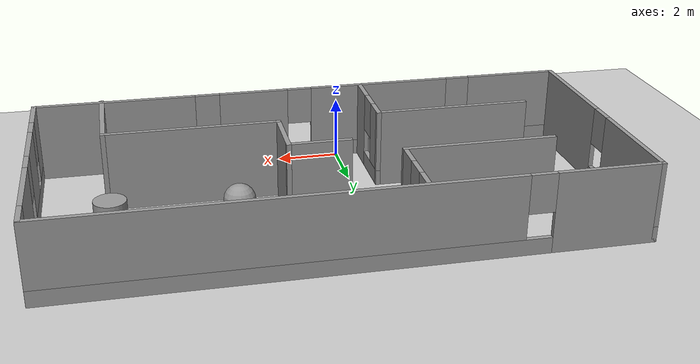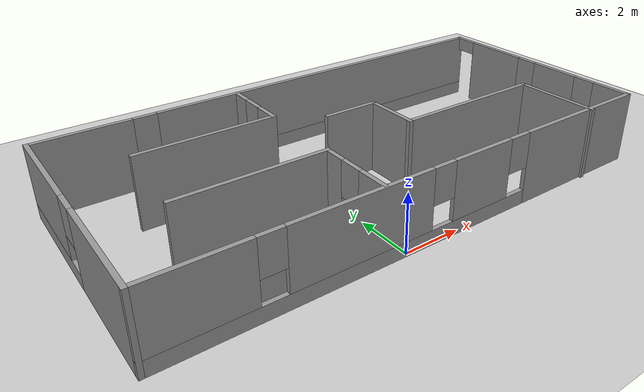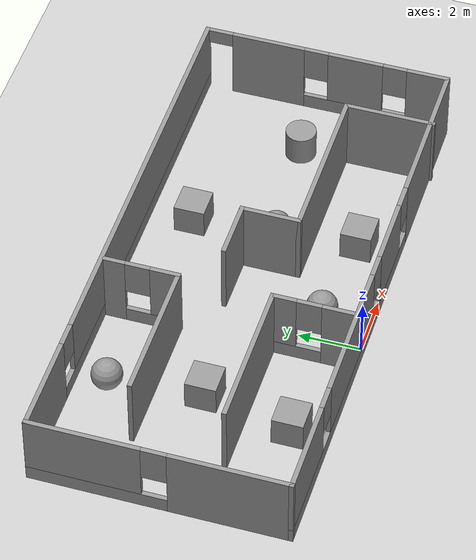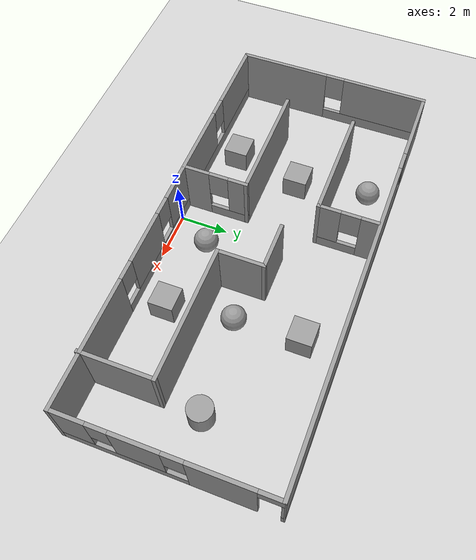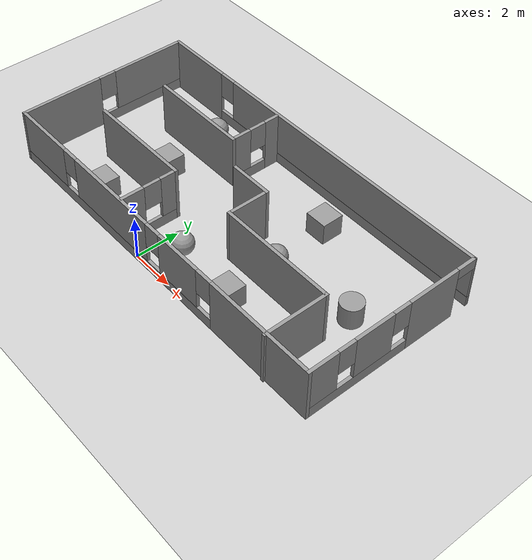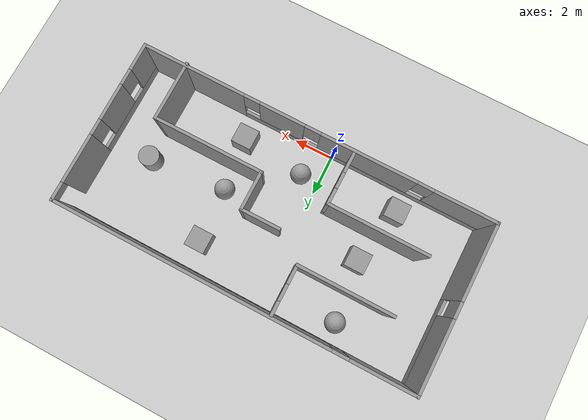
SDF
<sdf version="1.7">
 <world name="default">
  <light name="sun" type="directional">
   <pose>0 0 10 0 -0 0</pose>
   <diffuse>0.8 0.8 0.8 1</diffuse>
   <specular>0.2 0.2 0.2 1</specular>
   <attenuation>
    <range>1000</range>
    <constant>0.9</constant>
    <linear>0.01</linear>
    <quadratic>0.001</quadratic>
   </attenuation>
   <direction>-0.5 0.1 -0.9</direction>
   <spot><inner_angle>0</inner_angle><outer_angle>0</outer_angle><falloff>0</falloff></spot>
  </light>
  <model name="ground_plane">
   <static>1</static>
   <link name="link">
    <collision name="collision">
     <geometry><plane><normal>0 0 1</normal><size>100 100</size></plane></geometry>
     <surface>
      <contact><collide_bitmask>65535</collide_bitmask></contact>
      <friction><ode><mu>100</mu><mu2>50</mu2></ode></friction>
     </surface>
    </collision>
    <visual name="visual">
     <cast_shadows>0</cast_shadows>
     <geometry><plane><normal>0 0 1</normal><size>100 100</size></plane></geometry>
     <material>
      <script><uri>file://media/materials/scripts/gazebo.material</uri><name>Gazebo/Grey</name></script>
     </material>
    </visual>
   </link>
  </model>
  <gravity>0 0 -9.8</gravity>
  <magnetic_field>6e-06 2.3e-05 -4.2e-05</magnetic_field>
  <atmosphere type="adiabatic"/>
  <physics type="ode">
   <max_step_size>0.001</max_step_size>
   <real_time_factor>1</real_time_factor>
   <real_time_update_rate>1000</real_time_update_rate>
  </physics>
  <scene><ambient>0.4 0.4 0.4 1</ambient><background>0.7 0.7 0.7 1</background><shadows>1</shadows></scene>
  <spherical_coordinates>
   <surface_model>EARTH_WGS84</surface_model>
   <latitude_deg>0</latitude_deg>
   <longitude_deg>0</longitude_deg>
   <elevation>0</elevation>
   <heading_deg>0</heading_deg>
  </spherical_coordinates>
  <model name="world">
   <pose>1.08571 3.96011 0 0 -0 0</pose>
   <link name="Wall_11">
    <pose>-8.8 0.038361 0 0 -0 1.5708</pose>
    <visual name="Wall_11_Visual_0">
     <pose>-2.20315 0 1.25 0 -0 0</pose>
     <geometry><box><size>3.8437 0.15 2.5</size></box></geometry>
     <material>
      <script><uri>file://media/materials/scripts/gazebo.material</uri><name>Gazebo/Grey</name></script>
      <ambient>1 1 1 1</ambient>
     </material>
     <meta><layer>0</layer></meta>
    </visual>
    <collision name="Wall_11_Collision_0">
     <geometry><box><size>3.8437 0.15 2.5</size></box></geometry>
     <pose>-2.20315 0 1.25 0 -0 0</pose>
    </collision>
    <visual name="Wall_11_Visual_1">
     <pose>1.92185 0 0.25 0 -0 0</pose>
     <geometry><box><size>4.4063 0.15 0.5</size></box></geometry>
     <material>
      <script><uri>file://media/materials/scripts/gazebo.material</uri><name>Gazebo/Grey</name></script>
      <ambient>1 1 1 1</ambient>
     </material>
     <meta><layer>0</layer></meta>
    </visual>
    <collision name="Wall_11_Collision_1">
     <geometry><box><size>4.4063 0.15 0.5</size></box></geometry>
     <pose>1.92185 0 0.25 0 -0 0</pose>
    </collision>
    <visual name="Wall_11_Visual_2">
     <pose>2.32185 0 1.5 0 -0 0</pose>
     <geometry><box><size>3.6063 0.15 2</size></box></geometry>
     <material>
      <script><uri>file://media/materials/scripts/gazebo.material</uri><name>Gazebo/Grey</name></script>
      <ambient>1 1 1 1</ambient>
     </material>
     <meta><layer>0</layer></meta>
    </visual>
    <collision name="Wall_11_Collision_2">
     <geometry><box><size>3.6063 0.15 2</size></box></geometry>
     <pose>2.32185 0 1.5 0 -0 0</pose>
    </collision>
    <visual name="Wall_11_Visual_3">
     <pose>0.118702 0 1.9 0 -0 0</pose>
     <geometry><box><size>0.8 0.15 1.2</size></box></geometry>
     <material>
      <script><uri>file://media/materials/scripts/gazebo.material</uri><name>Gazebo/Grey</name></script>
      <ambient>1 1 1 1</ambient>
     </material>
     <meta><layer>0</layer></meta>
    </visual>
    <collision name="Wall_11_Collision_3">
     <geometry><box><size>0.8 0.15 1.2</size></box></geometry>
     <pose>0.118702 0 1.9 0 -0 0</pose>
    </collision>
   </link>
   <link name="Wall_12">
    <pose>-0 4.08836 0 0 -0 0</pose>
    <visual name="Wall_12_Visual_0">
     <pose>-7.25569 0 1.25 0 -0 0</pose>
     <geometry><box><size>3.23861 0.15 2.5</size></box></geometry>
     <material>
      <script><uri>file://media/materials/scripts/gazebo.material</uri><name>Gazebo/Grey</name></script>
      <ambient>1 1 1 1</ambient>
     </material>
     <meta><layer>0</layer></meta>
    </visual>
    <collision name="Wall_12_Collision_0">
     <geometry><box><size>3.23861 0.15 2.5</size></box></geometry>
     <pose>-7.25569 0 1.25 0 -0 0</pose>
    </collision>
    <visual name="Wall_12_Visual_1">
     <pose>1.61931 0 0.25 0 -0 0</pose>
     <geometry><box><size>14.5114 0.15 0.5</size></box></geometry>
     <material>
      <script><uri>file://media/materials/scripts/gazebo.material</uri><name>Gazebo/Grey</name></script>
      <ambient>1 1 1 1</ambient>
     </material>
     <meta><layer>0</layer></meta>
    </visual>
    <collision name="Wall_12_Collision_1">
     <geometry><box><size>14.5114 0.15 0.5</size></box></geometry>
     <pose>1.61931 0 0.25 0 -0 0</pose>
    </collision>
    <visual name="Wall_12_Visual_2">
     <pose>2.01931 0 1.5 0 -0 0</pose>
     <geometry><box><size>13.7114 0.15 2</size></box></geometry>
     <material>
      <script><uri>file://media/materials/scripts/gazebo.material</uri><name>Gazebo/Grey</name></script>
      <ambient>1 1 1 1</ambient>
     </material>
     <meta><layer>0</layer></meta>
    </visual>
    <collision name="Wall_12_Collision_2">
     <geometry><box><size>13.7114 0.15 2</size></box></geometry>
     <pose>2.01931 0 1.5 0 -0 0</pose>
    </collision>
    <visual name="Wall_12_Visual_3">
     <pose>-5.23639 0 1.9 0 -0 0</pose>
     <geometry><box><size>0.8 0.15 1.2</size></box></geometry>
     <material>
      <script><uri>file://media/materials/scripts/gazebo.material</uri><name>Gazebo/Grey</name></script>
      <ambient>1 1 1 1</ambient>
     </material>
     <meta><layer>0</layer></meta>
    </visual>
    <collision name="Wall_12_Collision_3">
     <geometry><box><size>0.8 0.15 1.2</size></box></geometry>
     <pose>-5.23639 0 1.9 0 -0 0</pose>
    </collision>
   </link>
   <link name="Wall_13">
    <pose>8.8 0.038361 0 0 -0 -1.5708</pose>
    <visual name="Wall_13_Visual_0">
     <pose>-4.10039 0 1.25 0 -0 0</pose>
     <geometry><box><size>0.049209 0.15 2.5</size></box></geometry>
     <material>
      <script><uri>file://media/materials/scripts/gazebo.material</uri><name>Gazebo/Grey</name></script>
      <ambient>1 1 1 1</ambient>
     </material>
     <meta><layer>0</layer></meta>
    </visual>
    <collision name="Wall_13_Collision_0">
     <geometry><box><size>0.049209 0.15 2.5</size></box></geometry>
     <pose>-4.10039 0 1.25 0 -0 0</pose>
    </collision>
    <visual name="Wall_13_Visual_1">
     <pose>-1.95492 0 1.25 0 -0 0</pose>
     <geometry><box><size>2.44174 0.15 2.5</size></box></geometry>
     <material>
      <script><uri>file://media/materials/scripts/gazebo.material</uri><name>Gazebo/Grey</name></script>
      <ambient>1 1 1 1</ambient>
     </material>
     <meta><layer>0</layer></meta>
    </visual>
    <collision name="Wall_13_Collision_1">
     <geometry><box><size>2.44174 0.15 2.5</size></box></geometry>
     <pose>-1.95492 0 1.25 0 -0 0</pose>
    </collision>
    <visual name="Wall_13_Visual_2">
     <pose>-0.734049 0 1.25 0 -0 0</pose>
     <geometry><box><size>0 0.15 2.5</size></box></geometry>
     <material>
      <script><uri>file://media/materials/scripts/gazebo.material</uri><name>Gazebo/Grey</name></script>
      <ambient>1 1 1 1</ambient>
     </material>
     <meta><layer>0</layer></meta>
    </visual>
    <collision name="Wall_13_Collision_2">
     <geometry><box><size>0 0.15 2.5</size></box></geometry>
     <pose>-0.734049 0 1.25 0 -0 0</pose>
    </collision>
    <visual name="Wall_13_Visual_3">
     <pose>1.69548 0 0.25 0 -0 0</pose>
     <geometry><box><size>4.85905 0.15 0.5</size></box></geometry>
     <material>
      <script><uri>file://media/materials/scripts/gazebo.material</uri><name>Gazebo/Grey</name></script>
      <ambient>1 1 1 1</ambient>
     </material>
     <meta><layer>0</layer></meta>
    </visual>
    <collision name="Wall_13_Collision_3">
     <geometry><box><size>4.85905 0.15 0.5</size></box></geometry>
     <pose>1.69548 0 0.25 0 -0 0</pose>
    </collision>
    <visual name="Wall_13_Visual_4">
     <pose>0.9888 0 1.5 0 -0 0</pose>
     <geometry><box><size>1.8457 0.15 2</size></box></geometry>
     <material>
      <script><uri>file://media/materials/scripts/gazebo.material</uri><name>Gazebo/Grey</name></script>
      <ambient>1 1 1 1</ambient>
     </material>
     <meta><layer>0</layer></meta>
    </visual>
    <collision name="Wall_13_Collision_4">
     <geometry><box><size>1.8457 0.15 2</size></box></geometry>
     <pose>0.9888 0 1.5 0 -0 0</pose>
    </collision>
    <visual name="Wall_13_Visual_5">
     <pose>3.41832 0 1.5 0 -0 0</pose>
     <geometry><box><size>1.41335 0.15 2</size></box></geometry>
     <material>
      <script><uri>file://media/materials/scripts/gazebo.material</uri><name>Gazebo/Grey</name></script>
      <ambient>1 1 1 1</ambient>
     </material>
     <meta><layer>0</layer></meta>
    </visual>
    <collision name="Wall_13_Collision_5">
     <geometry><box><size>1.41335 0.15 2</size></box></geometry>
     <pose>3.41832 0 1.5 0 -0 0</pose>
    </collision>
    <visual name="Wall_13_Visual_6">
     <pose>-0.734049 0 1.9 0 -0 0</pose>
     <geometry><box><size>0 0.15 1.2</size></box></geometry>
     <material>
      <script><uri>file://media/materials/scripts/gazebo.material</uri><name>Gazebo/Grey</name></script>
      <ambient>1 1 1 1</ambient>
     </material>
     <meta><layer>0</layer></meta>
    </visual>
    <collision name="Wall_13_Collision_6">
     <geometry><box><size>0 0.15 1.2</size></box></geometry>
     <pose>-0.734049 0 1.9 0 -0 0</pose>
    </collision>
    <visual name="Wall_13_Visual_7">
     <pose>-0.334049 0 1.9 0 -0 0</pose>
     <geometry><box><size>0.8 0.15 1.2</size></box></geometry>
     <material>
      <script><uri>file://media/materials/scripts/gazebo.material</uri><name>Gazebo/Grey</name></script>
      <ambient>1 1 1 1</ambient>
     </material>
     <meta><layer>0</layer></meta>
    </visual>
    <collision name="Wall_13_Collision_7">
     <geometry><box><size>0.8 0.15 1.2</size></box></geometry>
     <pose>-0.334049 0 1.9 0 -0 0</pose>
    </collision>
    <visual name="Wall_13_Visual_8">
     <pose>2.31165 0 1.9 0 -0 0</pose>
     <geometry><box><size>0.8 0.15 1.2</size></box></geometry>
     <material>
      <script><uri>file://media/materials/scripts/gazebo.material</uri><name>Gazebo/Grey</name></script>
      <ambient>1 1 1 1</ambient>
     </material>
     <meta><layer>0</layer></meta>
    </visual>
    <collision name="Wall_13_Collision_8">
     <geometry><box><size>0.8 0.15 1.2</size></box></geometry>
     <pose>2.31165 0 1.9 0 -0 0</pose>
    </collision>
    <visual name="Wall_13_Visual_9">
     <pose>-3.62579 0 2.25 0 -0 0</pose>
     <geometry><box><size>0.9 0.15 0.5</size></box></geometry>
     <material>
      <script><uri>file://media/materials/scripts/gazebo.material</uri><name>Gazebo/Grey</name></script>
      <ambient>1 1 1 1</ambient>
     </material>
     <meta><layer>0</layer></meta>
    </visual>
    <collision name="Wall_13_Collision_9">
     <geometry><box><size>0.9 0.15 0.5</size></box></geometry>
     <pose>-3.62579 0 2.25 0 -0 0</pose>
    </collision>
   </link>
   <link name="Wall_14">
    <pose>-0 -4.01164 0 0 -0 3.14159</pose>
    <visual name="Wall_14_Visual_0">
     <pose>-6.26473 0 1.25 0 -0 0</pose>
     <geometry><box><size>5.22054 0.15 2.5</size></box></geometry>
     <material>
      <script><uri>file://media/materials/scripts/gazebo.material</uri><name>Gazebo/Grey</name></script>
      <ambient>1 1 1 1</ambient>
     </material>
     <meta><layer>0</layer></meta>
    </visual>
    <collision name="Wall_14_Collision_0">
     <geometry><box><size>5.22054 0.15 2.5</size></box></geometry>
     <pose>-6.26473 0 1.25 0 -0 0</pose>
    </collision>
    <visual name="Wall_14_Visual_1">
     <pose>2.61027 0 0.25 0 -0 0</pose>
     <geometry><box><size>12.5295 0.15 0.5</size></box></geometry>
     <material>
      <script><uri>file://media/materials/scripts/gazebo.material</uri><name>Gazebo/Grey</name></script>
      <ambient>1 1 1 1</ambient>
     </material>
     <meta><layer>0</layer></meta>
    </visual>
    <collision name="Wall_14_Collision_1">
     <geometry><box><size>12.5295 0.15 0.5</size></box></geometry>
     <pose>2.61027 0 0.25 0 -0 0</pose>
    </collision>
    <visual name="Wall_14_Visual_2">
     <pose>-1.71626 0 1.5 0 -0 0</pose>
     <geometry><box><size>2.27639 0.15 2</size></box></geometry>
     <material>
      <script><uri>file://media/materials/scripts/gazebo.material</uri><name>Gazebo/Grey</name></script>
      <ambient>1 1 1 1</ambient>
     </material>
     <meta><layer>0</layer></meta>
    </visual>
    <collision name="Wall_14_Collision_2">
     <geometry><box><size>2.27639 0.15 2</size></box></geometry>
     <pose>-1.71626 0 1.5 0 -0 0</pose>
    </collision>
    <visual name="Wall_14_Visual_3">
     <pose>2.59069 0 1.5 0 -0 0</pose>
     <geometry><box><size>4.73751 0.15 2</size></box></geometry>
     <material>
      <script><uri>file://media/materials/scripts/gazebo.material</uri><name>Gazebo/Grey</name></script>
      <ambient>1 1 1 1</ambient>
     </material>
     <meta><layer>0</layer></meta>
    </visual>
    <collision name="Wall_14_Collision_3">
     <geometry><box><size>4.73751 0.15 2</size></box></geometry>
     <pose>2.59069 0 1.5 0 -0 0</pose>
    </collision>
    <visual name="Wall_14_Visual_4">
     <pose>7.31722 0 1.5 0 -0 0</pose>
     <geometry><box><size>3.11556 0.15 2</size></box></geometry>
     <material>
      <script><uri>file://media/materials/scripts/gazebo.material</uri><name>Gazebo/Grey</name></script>
      <ambient>1 1 1 1</ambient>
     </material>
     <meta><layer>0</layer></meta>
    </visual>
    <collision name="Wall_14_Collision_4">
     <geometry><box><size>3.11556 0.15 2</size></box></geometry>
     <pose>7.31722 0 1.5 0 -0 0</pose>
    </collision>
    <visual name="Wall_14_Visual_5">
     <pose>-3.25446 0 1.9 0 -0 0</pose>
     <geometry><box><size>0.8 0.15 1.2</size></box></geometry>
     <material>
      <script><uri>file://media/materials/scripts/gazebo.material</uri><name>Gazebo/Grey</name></script>
      <ambient>1 1 1 1</ambient>
     </material>
     <meta><layer>0</layer></meta>
    </visual>
    <collision name="Wall_14_Collision_5">
     <geometry><box><size>0.8 0.15 1.2</size></box></geometry>
     <pose>-3.25446 0 1.9 0 -0 0</pose>
    </collision>
    <visual name="Wall_14_Visual_6">
     <pose>-0.178068 0 1.9 0 -0 0</pose>
     <geometry><box><size>0.8 0.15 1.2</size></box></geometry>
     <material>
      <script><uri>file://media/materials/scripts/gazebo.material</uri><name>Gazebo/Grey</name></script>
      <ambient>1 1 1 1</ambient>
     </material>
     <meta><layer>0</layer></meta>
    </visual>
    <collision name="Wall_14_Collision_6">
     <geometry><box><size>0.8 0.15 1.2</size></box></geometry>
     <pose>-0.178068 0 1.9 0 -0 0</pose>
    </collision>
    <visual name="Wall_14_Visual_7">
     <pose>5.35944 0 1.9 0 -0 0</pose>
     <geometry><box><size>0.8 0.15 1.2</size></box></geometry>
     <material>
      <script><uri>file://media/materials/scripts/gazebo.material</uri><name>Gazebo/Grey</name></script>
      <ambient>1 1 1 1</ambient>
     </material>
     <meta><layer>0</layer></meta>
    </visual>
    <collision name="Wall_14_Collision_7">
     <geometry><box><size>0.8 0.15 1.2</size></box></geometry>
     <pose>5.35944 0 1.9 0 -0 0</pose>
    </collision>
   </link>
   <link name="Wall_16">
    <pose>-1.94792 2.79935 0 0 -0 -1.5708</pose>
    <visual name="Wall_16_Visual_0">
     <pose>-0.888235 0 1.25 0 -0 0</pose>
     <geometry><box><size>0.72353 0.15 2.5</size></box></geometry>
     <material>
      <script><uri>file://media/materials/scripts/gazebo.material</uri><name>Gazebo/Grey</name></script>
      <ambient>1 1 1 1</ambient>
     </material>
     <meta><layer>0</layer></meta>
    </visual>
    <collision name="Wall_16_Collision_0">
     <geometry><box><size>0.72353 0.15 2.5</size></box></geometry>
     <pose>-0.888235 0 1.25 0 -0 0</pose>
    </collision>
    <visual name="Wall_16_Visual_1">
     <pose>0.361765 0 0.25 0 -0 0</pose>
     <geometry><box><size>1.77647 0.15 0.5</size></box></geometry>
     <material>
      <script><uri>file://media/materials/scripts/gazebo.material</uri><name>Gazebo/Grey</name></script>
      <ambient>1 1 1 1</ambient>
     </material>
     <meta><layer>0</layer></meta>
    </visual>
    <collision name="Wall_16_Collision_1">
     <geometry><box><size>1.77647 0.15 0.5</size></box></geometry>
     <pose>0.361765 0 0.25 0 -0 0</pose>
    </collision>
    <visual name="Wall_16_Visual_2">
     <pose>0.761765 0 1.5 0 -0 0</pose>
     <geometry><box><size>0.97647 0.15 2</size></box></geometry>
     <material>
      <script><uri>file://media/materials/scripts/gazebo.material</uri><name>Gazebo/Grey</name></script>
      <ambient>1 1 1 1</ambient>
     </material>
     <meta><layer>0</layer></meta>
    </visual>
    <collision name="Wall_16_Collision_2">
     <geometry><box><size>0.97647 0.15 2</size></box></geometry>
     <pose>0.761765 0 1.5 0 -0 0</pose>
    </collision>
    <visual name="Wall_16_Visual_3">
     <pose>-0.12647 0 1.9 0 -0 0</pose>
     <geometry><box><size>0.8 0.15 1.2</size></box></geometry>
     <material>
      <script><uri>file://media/materials/scripts/gazebo.material</uri><name>Gazebo/Grey</name></script>
      <ambient>1 1 1 1</ambient>
     </material>
     <meta><layer>0</layer></meta>
    </visual>
    <collision name="Wall_16_Collision_3">
     <geometry><box><size>0.8 0.15 1.2</size></box></geometry>
     <pose>-0.12647 0 1.9 0 -0 0</pose>
    </collision>
   </link>
   <link name="Wall_17">
    <collision name="Wall_17_Collision">
     <geometry><box><size>4.75 0.15 2.5</size></box></geometry>
     <pose>0 0 1.25 0 -0 0</pose>
    </collision>
    <visual name="Wall_17_Visual">
     <pose>0 0 1.25 0 -0 0</pose>
     <geometry><box><size>4.75 0.15 2.5</size></box></geometry>
     <material>
      <script><uri>file://media/materials/scripts/gazebo.material</uri><name>Gazebo/Grey</name></script>
      <ambient>1 1 1 1</ambient>
     </material>
     <meta><layer>0</layer></meta>
    </visual>
    <pose>-4.24792 1.62435 0 0 -0 3.14159</pose>
   </link>
   <link name="Wall_19">
    <pose>-1.90724 -2.6534 0 0 -0 1.5708</pose>
    <visual name="Wall_19_Visual_0">
     <pose>-0.8205 0 1.25 0 -0 0</pose>
     <geometry><box><size>1.109 0.15 2.5</size></box></geometry>
     <material>
      <script><uri>file://media/materials/scripts/gazebo.material</uri><name>Gazebo/Grey</name></script>
      <ambient>1 1 1 1</ambient>
     </material>
     <meta><layer>0</layer></meta>
    </visual>
    <collision name="Wall_19_Collision_0">
     <geometry><box><size>1.109 0.15 2.5</size></box></geometry>
     <pose>-0.8205 0 1.25 0 -0 0</pose>
    </collision>
    <visual name="Wall_19_Visual_1">
     <pose>0.5545 0 0.25 0 -0 0</pose>
     <geometry><box><size>1.641 0.15 0.5</size></box></geometry>
     <material>
      <script><uri>file://media/materials/scripts/gazebo.material</uri><name>Gazebo/Grey</name></script>
      <ambient>1 1 1 1</ambient>
     </material>
     <meta><layer>0</layer></meta>
    </visual>
    <collision name="Wall_19_Collision_1">
     <geometry><box><size>1.641 0.15 0.5</size></box></geometry>
     <pose>0.5545 0 0.25 0 -0 0</pose>
    </collision>
    <visual name="Wall_19_Visual_2">
     <pose>0.9545 0 1.5 0 -0 0</pose>
     <geometry><box><size>0.841 0.15 2</size></box></geometry>
     <material>
      <script><uri>file://media/materials/scripts/gazebo.material</uri><name>Gazebo/Grey</name></script>
      <ambient>1 1 1 1</ambient>
     </material>
     <meta><layer>0</layer></meta>
    </visual>
    <collision name="Wall_19_Collision_2">
     <geometry><box><size>0.841 0.15 2</size></box></geometry>
     <pose>0.9545 0 1.5 0 -0 0</pose>
    </collision>
    <visual name="Wall_19_Visual_3">
     <pose>0.134 0 1.9 0 -0 0</pose>
     <geometry><box><size>0.8 0.15 1.2</size></box></geometry>
     <material>
      <script><uri>file://media/materials/scripts/gazebo.material</uri><name>Gazebo/Grey</name></script>
      <ambient>1 1 1 1</ambient>
     </material>
     <meta><layer>0</layer></meta>
    </visual>
    <collision name="Wall_19_Collision_3">
     <geometry><box><size>0.8 0.15 1.2</size></box></geometry>
     <pose>0.134 0 1.9 0 -0 0</pose>
    </collision>
   </link>
   <link name="Wall_20">
    <collision name="Wall_20_Collision">
     <geometry><box><size>5 0.15 2.5</size></box></geometry>
     <pose>0 0 1.25 0 -0 0</pose>
    </collision>
    <visual name="Wall_20_Visual">
     <pose>0 0 1.25 0 -0 0</pose>
     <geometry><box><size>5 0.15 2.5</size></box></geometry>
     <material>
      <script><uri>file://media/materials/scripts/gazebo.material</uri><name>Gazebo/Grey</name></script>
      <ambient>1 1 1 1</ambient>
     </material>
     <meta><layer>0</layer></meta>
    </visual>
    <pose>-4.33224 -1.3534 0 0 -0 3.14159</pose>
   </link>
   <link name="Wall_22">
    <collision name="Wall_22_Collision">
     <geometry><box><size>3 0.15 2.5</size></box></geometry>
     <pose>0 0 1.25 0 -0 0</pose>
    </collision>
    <visual name="Wall_22_Visual">
     <pose>0 0 1.25 0 -0 0</pose>
     <geometry><box><size>3 0.15 2.5</size></box></geometry>
     <material>
      <script><uri>file://media/materials/scripts/gazebo.material</uri><name>Gazebo/Grey</name></script>
      <ambient>1 1 1 1</ambient>
     </material>
     <meta><layer>0</layer></meta>
    </visual>
    <pose>6.66926 -2.66336 0 0 -0 1.5708</pose>
   </link>
   <link name="Wall_23">
    <collision name="Wall_23_Collision">
     <geometry><box><size>5.5 0.15 2.5</size></box></geometry>
     <pose>0 0 1.25 0 -0 0</pose>
    </collision>
    <visual name="Wall_23_Visual">
     <pose>0 0 1.25 0 -0 0</pose>
     <geometry><box><size>5.5 0.15 2.5</size></box></geometry>
     <material>
      <script><uri>file://media/materials/scripts/gazebo.material</uri><name>Gazebo/Grey</name></script>
      <ambient>1 1 1 1</ambient>
     </material>
     <meta><layer>0</layer></meta>
    </visual>
    <pose>3.99426 -1.23836 0 0 -0 3.14159</pose>
   </link>
   <link name="Wall_24">
    <collision name="Wall_24_Collision">
     <geometry><box><size>2 0.15 2.5</size></box></geometry>
     <pose>0 0 1.25 0 -0 0</pose>
    </collision>
    <visual name="Wall_24_Visual">
     <pose>0 0 1.25 0 -0 0</pose>
     <geometry><box><size>2 0.15 2.5</size></box></geometry>
     <material>
      <script><uri>file://media/materials/scripts/gazebo.material</uri><name>Gazebo/Grey</name></script>
      <ambient>1 1 1 1</ambient>
     </material>
     <meta><layer>0</layer></meta>
    </visual>
    <pose>1.31926 -0.313361 0 0 -0 1.5708</pose>
   </link>
   <link name="Wall_25">
    <collision name="Wall_25_Collision">
     <geometry><box><size>2 0.15 2.5</size></box></geometry>
     <pose>0 0 1.25 0 -0 0</pose>
    </collision>
    <visual name="Wall_25_Visual">
     <pose>0 0 1.25 0 -0 0</pose>
     <geometry><box><size>2 0.15 2.5</size></box></geometry>
     <material>
      <script><uri>file://media/materials/scripts/gazebo.material</uri><name>Gazebo/Grey</name></script>
      <ambient>1 1 1 1</ambient>
     </material>
     <meta><layer>0</layer></meta>
    </visual>
    <pose>0.394259 0.611639 0 0 -0 3.14159</pose>
   </link>
   <static>1</static>
  </model>
  <model name="unit_box">
   <pose>3.67156 6.56973 0.499995 -1e-05 -0 -0</pose>
   <link name="link">
    <inertial>
     <mass>1</mass>
     <inertia>
      <ixx>0.166667</ixx>
      <ixy>0</ixy>
      <ixz>0</ixz>
      <iyy>0.166667</iyy>
      <iyz>0</iyz>
      <izz>0.166667</izz>
     </inertia>
    </inertial>
    <collision name="collision"><geometry><box><size>1 1 1</size></box></geometry></collision>
    <visual name="visual">
     <geometry><box><size>1 1 1</size></box></geometry>
     <material>
      <script><name>Gazebo/Grey</name><uri>file://media/materials/scripts/gazebo.material</uri></script>
     </material>
    </visual>
   </link>
  </model>
  <model name="unit_sphere">
   <pose>3.82508 3.87695 0.5 0 -0 0</pose>
   <link name="link">
    <inertial>
     <mass>1</mass>
     <inertia><ixx>0.1</ixx><ixy>0</ixy><ixz>0</ixz><iyy>0.1</iyy><iyz>0</iyz><izz>0.1</izz></inertia>
    </inertial>
    <collision name="collision"><geometry><sphere><radius>0.5</radius></sphere></geometry></collision>
    <visual name="visual">
     <geometry><sphere><radius>0.5</radius></sphere></geometry>
     <material>
      <script><name>Gazebo/Grey</name><uri>file://media/materials/scripts/gazebo.material</uri></script>
     </material>
    </visual>
   </link>
  </model>
  <model name="unit_sphere_0">
   <pose>-3.64246 6.99204 0.5 0 -0 0</pose>
   <link name="link">
    <inertial>
     <mass>1</mass>
     <inertia><ixx>0.1</ixx><ixy>0</ixy><ixz>0</ixz><iyy>0.1</iyy><iyz>0</iyz><izz>0.1</izz></inertia>
    </inertial>
    <collision name="collision"><geometry><sphere><radius>0.5</radius></sphere></geometry></collision>
    <visual name="visual">
     <geometry><sphere><radius>0.5</radius></sphere></geometry>
     <material>
      <script><name>Gazebo/Grey</name><uri>file://media/materials/scripts/gazebo.material</uri></script>
     </material>
    </visual>
   </link>
  </model>
  <model name="unit_box_0">
   <pose>-3.85534 1.08151 0.499995 0 1e-05 0</pose>
   <link name="link">
    <inertial>
     <mass>1</mass>
     <inertia>
      <ixx>0.166667</ixx>
      <ixy>0</ixy>
      <ixz>0</ixz>
      <iyy>0.166667</iyy>
      <iyz>0</iyz>
      <izz>0.166667</izz>
     </inertia>
    </inertial>
    <collision name="collision"><geometry><box><size>1 1 1</size></box></geometry></collision>
    <visual name="visual">
     <geometry><box><size>1 1 1</size></box></geometry>
     <material>
      <script><name>Gazebo/Grey</name><uri>file://media/materials/scripts/gazebo.material</uri></script>
     </material>
    </visual>
   </link>
  </model>
  <model name="unit_box_1">
   <pose>-3.25563 3.98945 0.499995 -1e-05 -0 -0</pose>
   <link name="link">
    <inertial>
     <mass>1</mass>
     <inertia>
      <ixx>0.166667</ixx>
      <ixy>0</ixy>
      <ixz>0</ixz>
      <iyy>0.166667</iyy>
      <iyz>0</iyz>
      <izz>0.166667</izz>
     </inertia>
    </inertial>
    <collision name="collision"><geometry><box><size>1 1 1</size></box></geometry></collision>
    <visual name="visual">
     <geometry><box><size>1 1 1</size></box></geometry>
     <material>
      <script><name>Gazebo/Grey</name><uri>file://media/materials/scripts/gazebo.material</uri></script>
     </material>
    </visual>
   </link>
  </model>
  <model name="unit_box_2">
   <pose>4.10464 1.22049 0.499995 0 1e-05 0</pose>
   <link name="link">
    <inertial>
     <mass>1</mass>
     <inertia>
      <ixx>0.166667</ixx>
      <ixy>0</ixy>
      <ixz>0</ixz>
      <iyy>0.166667</iyy>
      <iyz>0</iyz>
      <izz>0.166667</izz>
     </inertia>
    </inertial>
    <collision name="collision"><geometry><box><size>1 1 1</size></box></geometry></collision>
    <visual name="visual">
     <geometry><box><size>1 1 1</size></box></geometry>
     <material>
      <script><name>Gazebo/Grey</name><uri>file://media/materials/scripts/gazebo.material</uri></script>
     </material>
    </visual>
   </link>
  </model>
  <model name="unit_sphere_1">
   <pose>0.952807 1.52773 0.5 0 -0 0</pose>
   <link name="link">
    <inertial>
     <mass>1</mass>
     <inertia><ixx>0.1</ixx><ixy>0</ixy><ixz>0</ixz><iyy>0.1</iyy><iyz>0</iyz><izz>0.1</izz></inertia>
    </inertial>
    <collision name="collision"><geometry><sphere><radius>0.5</radius></sphere></geometry></collision>
    <visual name="visual">
     <geometry><sphere><radius>0.5</radius></sphere></geometry>
     <material>
      <script><name>Gazebo/Grey</name><uri>file://media/materials/scripts/gazebo.material</uri></script>
     </material>
    </visual>
   </link>
  </model>
  <model name="unit_cylinder">
   <pose>7.68624 4.19635 0.499997 3e-06 4e-06 -0</pose>
   <link name="link">
    <inertial>
     <mass>1</mass>
     <inertia><ixx>0.145833</ixx><ixy>0</ixy><ixz>0</ixz><iyy>0.145833</iyy><iyz>0</iyz><izz>0.125</izz></inertia>
    </inertial>
    <collision name="collision">
     <geometry><cylinder><radius>0.5</radius><length>1</length></cylinder></geometry>
    </collision>
    <visual name="visual">
     <geometry><cylinder><radius>0.5</radius><length>1</length></cylinder></geometry>
     <material>
      <script><name>Gazebo/Grey</name><uri>file://media/materials/scripts/gazebo.material</uri></script>
     </material>
    </visual>
   </link>
  </model>
 </world>
</sdf>
